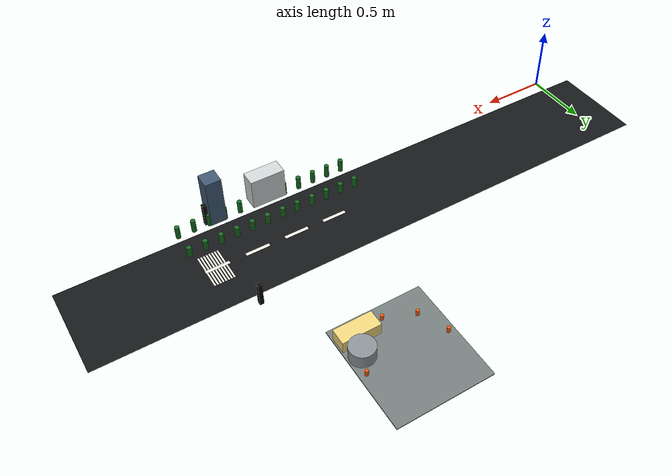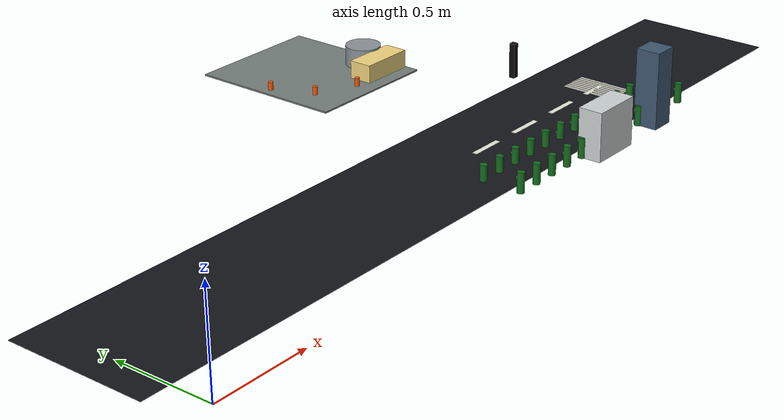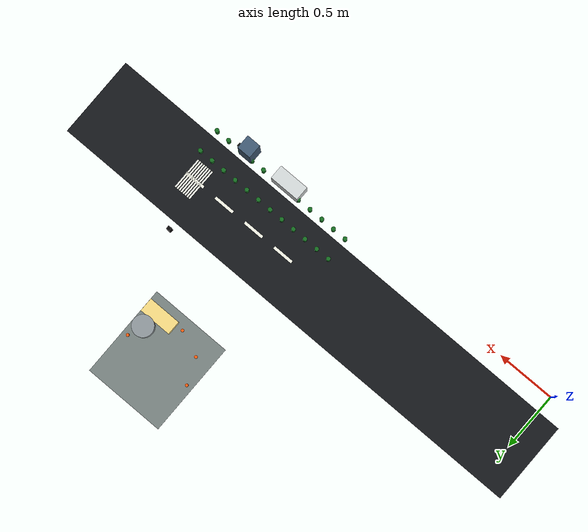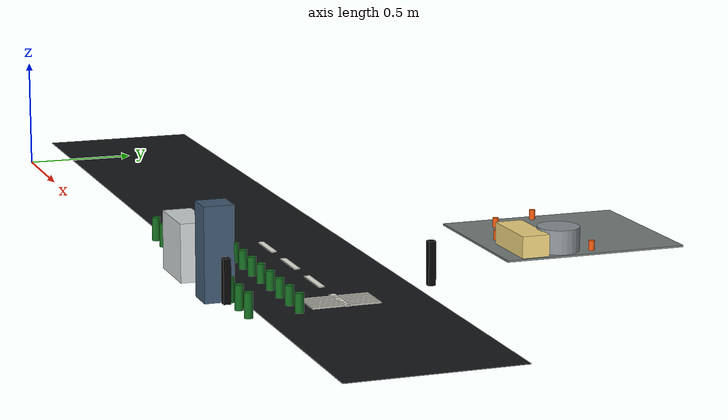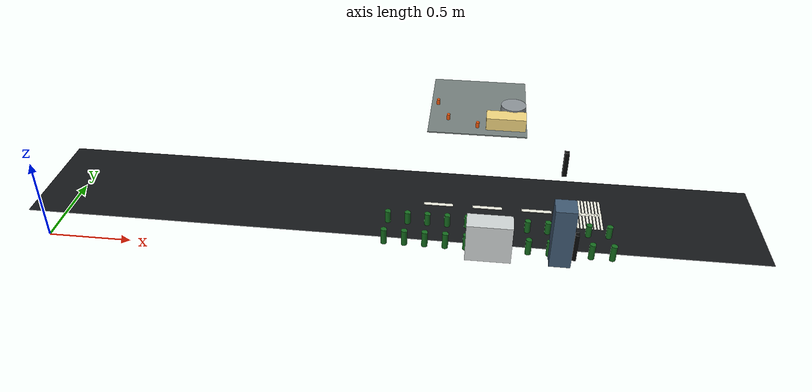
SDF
<sdf version="1.7">
 <world name="nexus_sandbox_imx219">
  <model name="RD-RING-S">
   <static>true</static>
   <pose>2.0 0.5 0.051000000000000004 0 0 0</pose>
   <link name="link">
    <collision name="collision">
     <geometry><box><size>4.4 0.7000000000000001 0.002</size></box></geometry>
    </collision>
    <visual name="visual">
     <geometry><box><size>4.4 0.7000000000000001 0.002</size></box></geometry>
     <material><ambient>0.08 0.09 0.1 1</ambient><diffuse>0.08 0.09 0.1 1</diffuse></material>
    </visual>
   </link>
  </model>
  <model name="LM-RING-S-06">
   <static>true</static>
   <pose>2.29 0.5 0.05450000000000001 0 0 0</pose>
   <link name="link">
    <collision name="collision"><geometry><box><size>0.18 0.025 0.004</size></box></geometry></collision>
    <visual name="visual">
     <geometry><box><size>0.18 0.025 0.004</size></box></geometry>
     <material><ambient>0.93 0.93 0.88 1</ambient><diffuse>0.93 0.93 0.88 1</diffuse></material>
    </visual>
   </link>
  </model>
  <model name="LM-RING-S-07">
   <static>true</static>
   <pose>2.59 0.5 0.05450000000000001 0 0 0</pose>
   <link name="link">
    <collision name="collision"><geometry><box><size>0.18 0.025 0.004</size></box></geometry></collision>
    <visual name="visual">
     <geometry><box><size>0.18 0.025 0.004</size></box></geometry>
     <material><ambient>0.93 0.93 0.88 1</ambient><diffuse>0.93 0.93 0.88 1</diffuse></material>
    </visual>
   </link>
  </model>
  <model name="LM-RING-S-08">
   <static>true</static>
   <pose>2.89 0.5 0.05450000000000001 0 0 0</pose>
   <link name="link">
    <collision name="collision"><geometry><box><size>0.18 0.025 0.004</size></box></geometry></collision>
    <visual name="visual">
     <geometry><box><size>0.18 0.025 0.004</size></box></geometry>
     <material><ambient>0.93 0.93 0.88 1</ambient><diffuse>0.93 0.93 0.88 1</diffuse></material>
    </visual>
   </link>
  </model>
  <model name="LM-RING-S-09">
   <static>true</static>
   <pose>3.19 0.5 0.05450000000000001 0 0 0</pose>
   <link name="link">
    <collision name="collision"><geometry><box><size>0.18 0.025 0.004</size></box></geometry></collision>
    <visual name="visual">
     <geometry><box><size>0.18 0.025 0.004</size></box></geometry>
     <material><ambient>0.93 0.93 0.88 1</ambient><diffuse>0.93 0.93 0.88 1</diffuse></material>
    </visual>
   </link>
  </model>
  <model name="CW-SE-Y-01">
   <static>true</static>
   <pose>3.1300000000000003 0.5 0.05450000000000001 0 0 0</pose>
   <link name="link">
    <collision name="collision"><geometry><box><size>0.014 0.28 0.004</size></box></geometry></collision>
    <visual name="visual">
     <geometry><box><size>0.014 0.28 0.004</size></box></geometry>
     <material><ambient>0.93 0.93 0.88 1</ambient><diffuse>0.93 0.93 0.88 1</diffuse></material>
    </visual>
   </link>
  </model>
  <model name="CW-SE-Y-02">
   <static>true</static>
   <pose>3.1500000000000004 0.5 0.05450000000000001 0 0 0</pose>
   <link name="link">
    <collision name="collision"><geometry><box><size>0.014 0.28 0.004</size></box></geometry></collision>
    <visual name="visual">
     <geometry><box><size>0.014 0.28 0.004</size></box></geometry>
     <material><ambient>0.93 0.93 0.88 1</ambient><diffuse>0.93 0.93 0.88 1</diffuse></material>
    </visual>
   </link>
  </model>
  <model name="CW-SE-Y-03">
   <static>true</static>
   <pose>3.1700000000000004 0.5 0.05450000000000001 0 0 0</pose>
   <link name="link">
    <collision name="collision"><geometry><box><size>0.014 0.28 0.004</size></box></geometry></collision>
    <visual name="visual">
     <geometry><box><size>0.014 0.28 0.004</size></box></geometry>
     <material><ambient>0.93 0.93 0.88 1</ambient><diffuse>0.93 0.93 0.88 1</diffuse></material>
    </visual>
   </link>
  </model>
  <model name="CW-SE-Y-04">
   <static>true</static>
   <pose>3.1900000000000004 0.5 0.05450000000000001 0 0 0</pose>
   <link name="link">
    <collision name="collision"><geometry><box><size>0.014 0.28 0.004</size></box></geometry></collision>
    <visual name="visual">
     <geometry><box><size>0.014 0.28 0.004</size></box></geometry>
     <material><ambient>0.93 0.93 0.88 1</ambient><diffuse>0.93 0.93 0.88 1</diffuse></material>
    </visual>
   </link>
  </model>
  <model name="CW-SE-Y-05">
   <static>true</static>
   <pose>3.21 0.5 0.05450000000000001 0 0 0</pose>
   <link name="link">
    <collision name="collision"><geometry><box><size>0.014 0.28 0.004</size></box></geometry></collision>
    <visual name="visual">
     <geometry><box><size>0.014 0.28 0.004</size></box></geometry>
     <material><ambient>0.93 0.93 0.88 1</ambient><diffuse>0.93 0.93 0.88 1</diffuse></material>
    </visual>
   </link>
  </model>
  <model name="CW-SE-Y-06">
   <static>true</static>
   <pose>3.23 0.5 0.05450000000000001 0 0 0</pose>
   <link name="link">
    <collision name="collision"><geometry><box><size>0.014 0.28 0.004</size></box></geometry></collision>
    <visual name="visual">
     <geometry><box><size>0.014 0.28 0.004</size></box></geometry>
     <material><ambient>0.93 0.93 0.88 1</ambient><diffuse>0.93 0.93 0.88 1</diffuse></material>
    </visual>
   </link>
  </model>
  <model name="CW-SE-Y-07">
   <static>true</static>
   <pose>3.25 0.5 0.05450000000000001 0 0 0</pose>
   <link name="link">
    <collision name="collision"><geometry><box><size>0.014 0.28 0.004</size></box></geometry></collision>
    <visual name="visual">
     <geometry><box><size>0.014 0.28 0.004</size></box></geometry>
     <material><ambient>0.93 0.93 0.88 1</ambient><diffuse>0.93 0.93 0.88 1</diffuse></material>
    </visual>
   </link>
  </model>
  <model name="CW-SE-Y-08">
   <static>true</static>
   <pose>3.27 0.5 0.05450000000000001 0 0 0</pose>
   <link name="link">
    <collision name="collision"><geometry><box><size>0.014 0.28 0.004</size></box></geometry></collision>
    <visual name="visual">
     <geometry><box><size>0.014 0.28 0.004</size></box></geometry>
     <material><ambient>0.93 0.93 0.88 1</ambient><diffuse>0.93 0.93 0.88 1</diffuse></material>
    </visual>
   </link>
  </model>
  <model name="IND-SE-PAD">
   <static>true</static>
   <pose>2.5 1.75 0.054000000000000006 0 0 0</pose>
   <link name="link">
    <collision name="collision">
     <geometry><box><size>0.7000000000000001 0.8 0.008</size></box></geometry>
    </collision>
    <visual name="visual">
     <geometry><box><size>0.7000000000000001 0.8 0.008</size></box></geometry>
     <material><ambient>0.46 0.5 0.49 1</ambient><diffuse>0.46 0.5 0.49 1</diffuse></material>
    </visual>
   </link>
  </model>
  <model name="SE-T03">
   <static>true</static>
   <pose>2.75 1.62 0.10500000000000001 0 0 0</pose>
   <link name="link">
    <collision name="collision">
     <geometry><cylinder><radius>0.09</radius><length>0.11</length></cylinder></geometry>
    </collision>
    <visual name="visual">
     <geometry><cylinder><radius>0.09</radius><length>0.11</length></cylinder></geometry>
     <material><ambient>0.55 0.58 0.6 1</ambient><diffuse>0.55 0.58 0.6 1</diffuse></material>
    </visual>
   </link>
  </model>
  <model name="SE-B02">
   <static>true</static>
   <pose>2.7 1.48 0.1 0 0 0</pose>
   <link name="link">
    <collision name="collision"><geometry><box><size>0.28 0.12 0.1</size></box></geometry></collision>
    <visual name="visual">
     <geometry><box><size>0.28 0.12 0.1</size></box></geometry>
     <material><ambient>0.95 0.84 0.5 1</ambient><diffuse>0.95 0.84 0.5 1</diffuse></material>
    </visual>
   </link>
  </model>
  <model name="BLD-B04">
   <static>true</static>
   <pose>2.6 0.06 0.16999999999999998 0 0 0</pose>
   <link name="link">
    <collision name="collision"><geometry><box><size>0.26 0.12 0.24</size></box></geometry></collision>
    <visual name="visual">
     <geometry><box><size>0.26 0.12 0.24</size></box></geometry>
     <material><ambient>0.82 0.84 0.84 1</ambient><diffuse>0.82 0.84 0.84 1</diffuse></material>
    </visual>
   </link>
  </model>
  <model name="BLD-B05">
   <static>true</static>
   <pose>3.0 0.06 0.24 0 0 0</pose>
   <link name="link">
    <collision name="collision"><geometry><box><size>0.12 0.12 0.38</size></box></geometry></collision>
    <visual name="visual">
     <geometry><box><size>0.12 0.12 0.38</size></box></geometry>
     <material><ambient>0.25 0.35 0.45 1</ambient><diffuse>0.25 0.35 0.45 1</diffuse></material>
    </visual>
   </link>
  </model>
  <model name="TR-F01-12">
   <static>true</static>
   <pose>2.0 0.1 0.1 0 0 0</pose>
   <link name="link">
    <collision name="collision">
     <geometry><cylinder><radius>0.0175</radius><length>0.1</length></cylinder></geometry>
    </collision>
    <visual name="visual">
     <geometry><cylinder><radius>0.0175</radius><length>0.1</length></cylinder></geometry>
     <material><ambient>0.08 0.42 0.12 1</ambient><diffuse>0.08 0.42 0.12 1</diffuse></material>
    </visual>
   </link>
  </model>
  <model name="TR-F01-13">
   <static>true</static>
   <pose>2.118181818181818 0.1 0.1 0 0 0</pose>
   <link name="link">
    <collision name="collision">
     <geometry><cylinder><radius>0.0175</radius><length>0.1</length></cylinder></geometry>
    </collision>
    <visual name="visual">
     <geometry><cylinder><radius>0.0175</radius><length>0.1</length></cylinder></geometry>
     <material><ambient>0.08 0.42 0.12 1</ambient><diffuse>0.08 0.42 0.12 1</diffuse></material>
    </visual>
   </link>
  </model>
  <model name="TR-F01-14">
   <static>true</static>
   <pose>2.2363636363636368 0.1 0.1 0 0 0</pose>
   <link name="link">
    <collision name="collision">
     <geometry><cylinder><radius>0.0175</radius><length>0.1</length></cylinder></geometry>
    </collision>
    <visual name="visual">
     <geometry><cylinder><radius>0.0175</radius><length>0.1</length></cylinder></geometry>
     <material><ambient>0.08 0.42 0.12 1</ambient><diffuse>0.08 0.42 0.12 1</diffuse></material>
    </visual>
   </link>
  </model>
  <model name="TR-F01-15">
   <static>true</static>
   <pose>2.3545454545454545 0.1 0.1 0 0 0</pose>
   <link name="link">
    <collision name="collision">
     <geometry><cylinder><radius>0.0175</radius><length>0.1</length></cylinder></geometry>
    </collision>
    <visual name="visual">
     <geometry><cylinder><radius>0.0175</radius><length>0.1</length></cylinder></geometry>
     <material><ambient>0.08 0.42 0.12 1</ambient><diffuse>0.08 0.42 0.12 1</diffuse></material>
    </visual>
   </link>
  </model>
  <model name="TR-F01-16">
   <static>true</static>
   <pose>2.4727272727272727 0.1 0.1 0 0 0</pose>
   <link name="link">
    <collision name="collision">
     <geometry><cylinder><radius>0.0175</radius><length>0.1</length></cylinder></geometry>
    </collision>
    <visual name="visual">
     <geometry><cylinder><radius>0.0175</radius><length>0.1</length></cylinder></geometry>
     <material><ambient>0.08 0.42 0.12 1</ambient><diffuse>0.08 0.42 0.12 1</diffuse></material>
    </visual>
   </link>
  </model>
  <model name="TR-F01-17">
   <static>true</static>
   <pose>2.5909090909090913 0.1 0.1 0 0 0</pose>
   <link name="link">
    <collision name="collision">
     <geometry><cylinder><radius>0.0175</radius><length>0.1</length></cylinder></geometry>
    </collision>
    <visual name="visual">
     <geometry><cylinder><radius>0.0175</radius><length>0.1</length></cylinder></geometry>
     <material><ambient>0.08 0.42 0.12 1</ambient><diffuse>0.08 0.42 0.12 1</diffuse></material>
    </visual>
   </link>
  </model>
  <model name="TR-F01-18">
   <static>true</static>
   <pose>2.7090909090909094 0.1 0.1 0 0 0</pose>
   <link name="link">
    <collision name="collision">
     <geometry><cylinder><radius>0.0175</radius><length>0.1</length></cylinder></geometry>
    </collision>
    <visual name="visual">
     <geometry><cylinder><radius>0.0175</radius><length>0.1</length></cylinder></geometry>
     <material><ambient>0.08 0.42 0.12 1</ambient><diffuse>0.08 0.42 0.12 1</diffuse></material>
    </visual>
   </link>
  </model>
  <model name="TR-F01-19">
   <static>true</static>
   <pose>2.8272727272727276 0.1 0.1 0 0 0</pose>
   <link name="link">
    <collision name="collision">
     <geometry><cylinder><radius>0.0175</radius><length>0.1</length></cylinder></geometry>
    </collision>
    <visual name="visual">
     <geometry><cylinder><radius>0.0175</radius><length>0.1</length></cylinder></geometry>
     <material><ambient>0.08 0.42 0.12 1</ambient><diffuse>0.08 0.42 0.12 1</diffuse></material>
    </visual>
   </link>
  </model>
  <model name="TR-F01-20">
   <static>true</static>
   <pose>2.9454545454545458 0.1 0.1 0 0 0</pose>
   <link name="link">
    <collision name="collision">
     <geometry><cylinder><radius>0.0175</radius><length>0.1</length></cylinder></geometry>
    </collision>
    <visual name="visual">
     <geometry><cylinder><radius>0.0175</radius><length>0.1</length></cylinder></geometry>
     <material><ambient>0.08 0.42 0.12 1</ambient><diffuse>0.08 0.42 0.12 1</diffuse></material>
    </visual>
   </link>
  </model>
  <model name="TR-F01-21">
   <static>true</static>
   <pose>3.063636363636364 0.1 0.1 0 0 0</pose>
   <link name="link">
    <collision name="collision">
     <geometry><cylinder><radius>0.0175</radius><length>0.1</length></cylinder></geometry>
    </collision>
    <visual name="visual">
     <geometry><cylinder><radius>0.0175</radius><length>0.1</length></cylinder></geometry>
     <material><ambient>0.08 0.42 0.12 1</ambient><diffuse>0.08 0.42 0.12 1</diffuse></material>
    </visual>
   </link>
  </model>
  <model name="TR-F01-22">
   <static>true</static>
   <pose>3.181818181818182 0.1 0.1 0 0 0</pose>
   <link name="link">
    <collision name="collision">
     <geometry><cylinder><radius>0.0175</radius><length>0.1</length></cylinder></geometry>
    </collision>
    <visual name="visual">
     <geometry><cylinder><radius>0.0175</radius><length>0.1</length></cylinder></geometry>
     <material><ambient>0.08 0.42 0.12 1</ambient><diffuse>0.08 0.42 0.12 1</diffuse></material>
    </visual>
   </link>
  </model>
  <model name="TR-F01-23">
   <static>true</static>
   <pose>3.3000000000000003 0.1 0.1 0 0 0</pose>
   <link name="link">
    <collision name="collision">
     <geometry><cylinder><radius>0.0175</radius><length>0.1</length></cylinder></geometry>
    </collision>
    <visual name="visual">
     <geometry><cylinder><radius>0.0175</radius><length>0.1</length></cylinder></geometry>
     <material><ambient>0.08 0.42 0.12 1</ambient><diffuse>0.08 0.42 0.12 1</diffuse></material>
    </visual>
   </link>
  </model>
  <model name="TR-F02-12">
   <static>true</static>
   <pose>2.0 0.3 0.09 0 0 0</pose>
   <link name="link">
    <collision name="collision">
     <geometry><cylinder><radius>0.0175</radius><length>0.08</length></cylinder></geometry>
    </collision>
    <visual name="visual">
     <geometry><cylinder><radius>0.0175</radius><length>0.08</length></cylinder></geometry>
     <material><ambient>0.08 0.42 0.12 1</ambient><diffuse>0.08 0.42 0.12 1</diffuse></material>
    </visual>
   </link>
  </model>
  <model name="TR-F02-13">
   <static>true</static>
   <pose>2.118181818181818 0.3 0.09 0 0 0</pose>
   <link name="link">
    <collision name="collision">
     <geometry><cylinder><radius>0.0175</radius><length>0.08</length></cylinder></geometry>
    </collision>
    <visual name="visual">
     <geometry><cylinder><radius>0.0175</radius><length>0.08</length></cylinder></geometry>
     <material><ambient>0.08 0.42 0.12 1</ambient><diffuse>0.08 0.42 0.12 1</diffuse></material>
    </visual>
   </link>
  </model>
  <model name="TR-F02-14">
   <static>true</static>
   <pose>2.2363636363636368 0.3 0.09 0 0 0</pose>
   <link name="link">
    <collision name="collision">
     <geometry><cylinder><radius>0.0175</radius><length>0.08</length></cylinder></geometry>
    </collision>
    <visual name="visual">
     <geometry><cylinder><radius>0.0175</radius><length>0.08</length></cylinder></geometry>
     <material><ambient>0.08 0.42 0.12 1</ambient><diffuse>0.08 0.42 0.12 1</diffuse></material>
    </visual>
   </link>
  </model>
  <model name="TR-F02-15">
   <static>true</static>
   <pose>2.3545454545454545 0.3 0.09 0 0 0</pose>
   <link name="link">
    <collision name="collision">
     <geometry><cylinder><radius>0.0175</radius><length>0.08</length></cylinder></geometry>
    </collision>
    <visual name="visual">
     <geometry><cylinder><radius>0.0175</radius><length>0.08</length></cylinder></geometry>
     <material><ambient>0.08 0.42 0.12 1</ambient><diffuse>0.08 0.42 0.12 1</diffuse></material>
    </visual>
   </link>
  </model>
  <model name="TR-F02-16">
   <static>true</static>
   <pose>2.4727272727272727 0.3 0.09 0 0 0</pose>
   <link name="link">
    <collision name="collision">
     <geometry><cylinder><radius>0.0175</radius><length>0.08</length></cylinder></geometry>
    </collision>
    <visual name="visual">
     <geometry><cylinder><radius>0.0175</radius><length>0.08</length></cylinder></geometry>
     <material><ambient>0.08 0.42 0.12 1</ambient><diffuse>0.08 0.42 0.12 1</diffuse></material>
    </visual>
   </link>
  </model>
  <model name="TR-F02-17">
   <static>true</static>
   <pose>2.5909090909090913 0.3 0.09 0 0 0</pose>
   <link name="link">
    <collision name="collision">
     <geometry><cylinder><radius>0.0175</radius><length>0.08</length></cylinder></geometry>
    </collision>
    <visual name="visual">
     <geometry><cylinder><radius>0.0175</radius><length>0.08</length></cylinder></geometry>
     <material><ambient>0.08 0.42 0.12 1</ambient><diffuse>0.08 0.42 0.12 1</diffuse></material>
    </visual>
   </link>
  </model>
  <model name="TR-F02-18">
   <static>true</static>
   <pose>2.7090909090909094 0.3 0.09 0 0 0</pose>
   <link name="link">
    <collision name="collision">
     <geometry><cylinder><radius>0.0175</radius><length>0.08</length></cylinder></geometry>
    </collision>
    <visual name="visual">
     <geometry><cylinder><radius>0.0175</radius><length>0.08</length></cylinder></geometry>
     <material><ambient>0.08 0.42 0.12 1</ambient><diffuse>0.08 0.42 0.12 1</diffuse></material>
    </visual>
   </link>
  </model>
  <model name="TR-F02-19">
   <static>true</static>
   <pose>2.8272727272727276 0.3 0.09 0 0 0</pose>
   <link name="link">
    <collision name="collision">
     <geometry><cylinder><radius>0.0175</radius><length>0.08</length></cylinder></geometry>
    </collision>
    <visual name="visual">
     <geometry><cylinder><radius>0.0175</radius><length>0.08</length></cylinder></geometry>
     <material><ambient>0.08 0.42 0.12 1</ambient><diffuse>0.08 0.42 0.12 1</diffuse></material>
    </visual>
   </link>
  </model>
  <model name="TR-F02-20">
   <static>true</static>
   <pose>2.9454545454545458 0.3 0.09 0 0 0</pose>
   <link name="link">
    <collision name="collision">
     <geometry><cylinder><radius>0.0175</radius><length>0.08</length></cylinder></geometry>
    </collision>
    <visual name="visual">
     <geometry><cylinder><radius>0.0175</radius><length>0.08</length></cylinder></geometry>
     <material><ambient>0.08 0.42 0.12 1</ambient><diffuse>0.08 0.42 0.12 1</diffuse></material>
    </visual>
   </link>
  </model>
  <model name="TR-F02-21">
   <static>true</static>
   <pose>3.063636363636364 0.3 0.09 0 0 0</pose>
   <link name="link">
    <collision name="collision">
     <geometry><cylinder><radius>0.0175</radius><length>0.08</length></cylinder></geometry>
    </collision>
    <visual name="visual">
     <geometry><cylinder><radius>0.0175</radius><length>0.08</length></cylinder></geometry>
     <material><ambient>0.08 0.42 0.12 1</ambient><diffuse>0.08 0.42 0.12 1</diffuse></material>
    </visual>
   </link>
  </model>
  <model name="TR-F02-22">
   <static>true</static>
   <pose>3.181818181818182 0.3 0.09 0 0 0</pose>
   <link name="link">
    <collision name="collision">
     <geometry><cylinder><radius>0.0175</radius><length>0.08</length></cylinder></geometry>
    </collision>
    <visual name="visual">
     <geometry><cylinder><radius>0.0175</radius><length>0.08</length></cylinder></geometry>
     <material><ambient>0.08 0.42 0.12 1</ambient><diffuse>0.08 0.42 0.12 1</diffuse></material>
    </visual>
   </link>
  </model>
  <model name="TR-F02-23">
   <static>true</static>
   <pose>3.3000000000000003 0.3 0.09 0 0 0</pose>
   <link name="link">
    <collision name="collision">
     <geometry><cylinder><radius>0.0175</radius><length>0.08</length></cylinder></geometry>
    </collision>
    <visual name="visual">
     <geometry><cylinder><radius>0.0175</radius><length>0.08</length></cylinder></geometry>
     <material><ambient>0.08 0.42 0.12 1</ambient><diffuse>0.08 0.42 0.12 1</diffuse></material>
    </visual>
   </link>
  </model>
  <model name="TL-SE-1">
   <static>true</static>
   <pose>3.08 0.08 0.14 0 0 0</pose>
   <link name="link">
    <collision name="collision"><geometry><box><size>0.03 0.03 0.18</size></box></geometry></collision>
    <visual name="visual">
     <geometry><box><size>0.03 0.03 0.18</size></box></geometry>
     <material><ambient>0.03 0.03 0.03 1</ambient><diffuse>0.03 0.03 0.03 1</diffuse></material>
    </visual>
   </link>
  </model>
  <model name="TL-SE-3">
   <static>true</static>
   <pose>3.08 0.92 0.14 0 0 0</pose>
   <link name="link">
    <collision name="collision"><geometry><box><size>0.03 0.03 0.18</size></box></geometry></collision>
    <visual name="visual">
     <geometry><box><size>0.03 0.03 0.18</size></box></geometry>
     <material><ambient>0.03 0.03 0.03 1</ambient><diffuse>0.03 0.03 0.03 1</diffuse></material>
    </visual>
   </link>
  </model>
  <model name="SE-C-01">
   <static>true</static>
   <pose>2.8 1.75 0.07500000000000001 0 0 0</pose>
   <link name="link">
    <collision name="collision">
     <geometry><cylinder><radius>0.0125</radius><length>0.05</length></cylinder></geometry>
    </collision>
    <visual name="visual">
     <geometry><cylinder><radius>0.0125</radius><length>0.05</length></cylinder></geometry>
     <material><ambient>0.95 0.35 0.05 1</ambient><diffuse>0.95 0.35 0.05 1</diffuse></material>
    </visual>
   </link>
  </model>
  <model name="SE-C-05">
   <static>true</static>
   <pose>2.2 1.75 0.07500000000000001 0 0 0</pose>
   <link name="link">
    <collision name="collision">
     <geometry><cylinder><radius>0.0125</radius><length>0.05</length></cylinder></geometry>
    </collision>
    <visual name="visual">
     <geometry><cylinder><radius>0.0125</radius><length>0.05</length></cylinder></geometry>
     <material><ambient>0.95 0.35 0.05 1</ambient><diffuse>0.95 0.35 0.05 1</diffuse></material>
    </visual>
   </link>
  </model>
  <model name="SE-C-06">
   <static>true</static>
   <pose>2.2878679656440357 1.5378679656440357 0.07500000000000001 0 0 0</pose>
   <link name="link">
    <collision name="collision">
     <geometry><cylinder><radius>0.0125</radius><length>0.05</length></cylinder></geometry>
    </collision>
    <visual name="visual">
     <geometry><cylinder><radius>0.0125</radius><length>0.05</length></cylinder></geometry>
     <material><ambient>0.95 0.35 0.05 1</ambient><diffuse>0.95 0.35 0.05 1</diffuse></material>
    </visual>
   </link>
  </model>
  <model name="SE-C-07">
   <static>true</static>
   <pose>2.5 1.45 0.07500000000000001 0 0 0</pose>
   <link name="link">
    <collision name="collision">
     <geometry><cylinder><radius>0.0125</radius><length>0.05</length></cylinder></geometry>
    </collision>
    <visual name="visual">
     <geometry><cylinder><radius>0.0125</radius><length>0.05</length></cylinder></geometry>
     <material><ambient>0.95 0.35 0.05 1</ambient><diffuse>0.95 0.35 0.05 1</diffuse></material>
    </visual>
   </link>
  </model>
  <model name="SE-C-08">
   <static>true</static>
   <pose>2.7121320343559643 1.5378679656440357 0.07500000000000001 0 0 0</pose>
   <link name="link">
    <collision name="collision">
     <geometry><cylinder><radius>0.0125</radius><length>0.05</length></cylinder></geometry>
    </collision>
    <visual name="visual">
     <geometry><cylinder><radius>0.0125</radius><length>0.05</length></cylinder></geometry>
     <material><ambient>0.95 0.35 0.05 1</ambient><diffuse>0.95 0.35 0.05 1</diffuse></material>
    </visual>
   </link>
  </model>
 </world>
</sdf>
